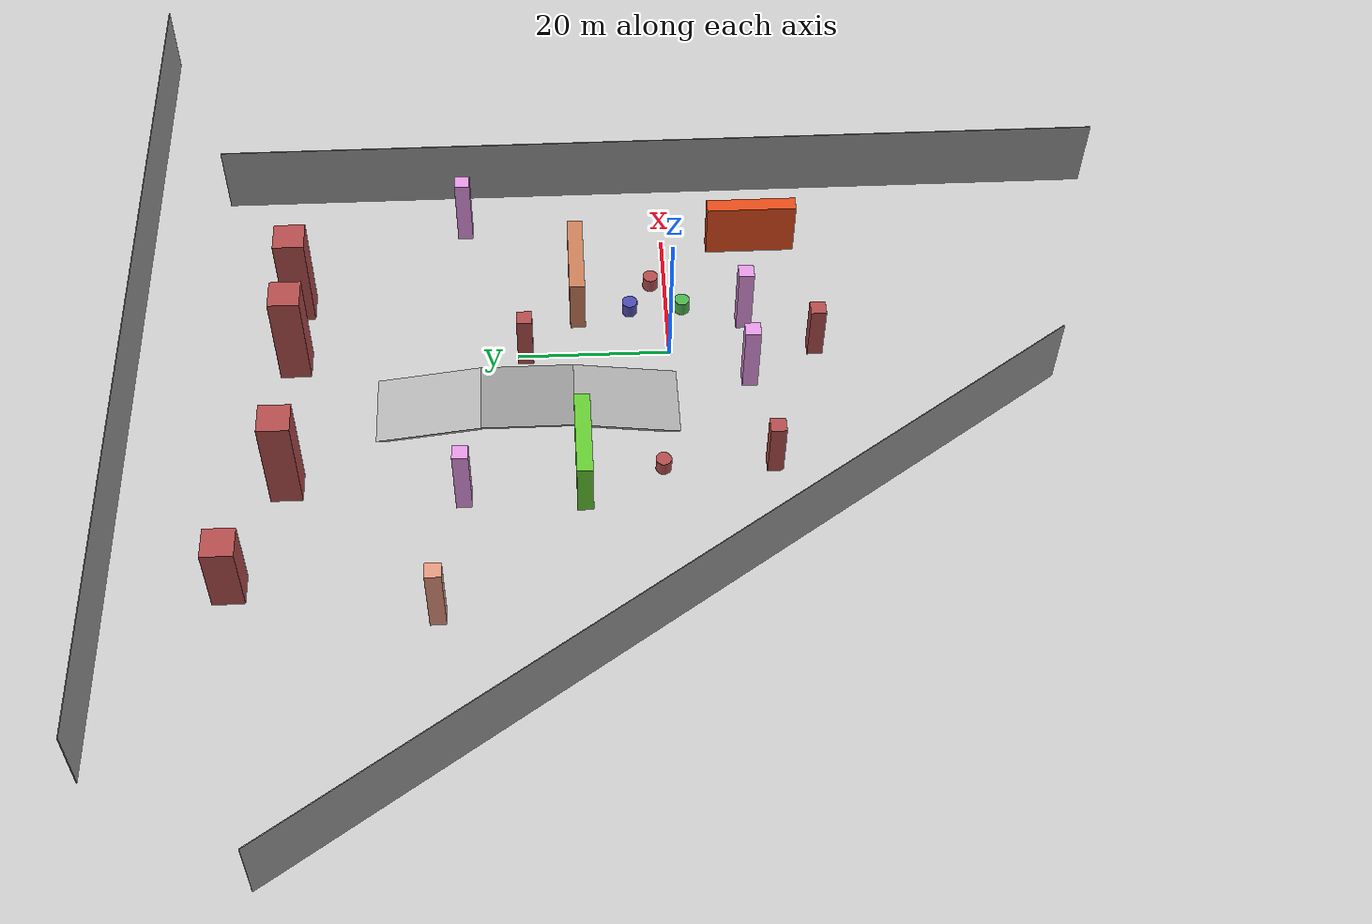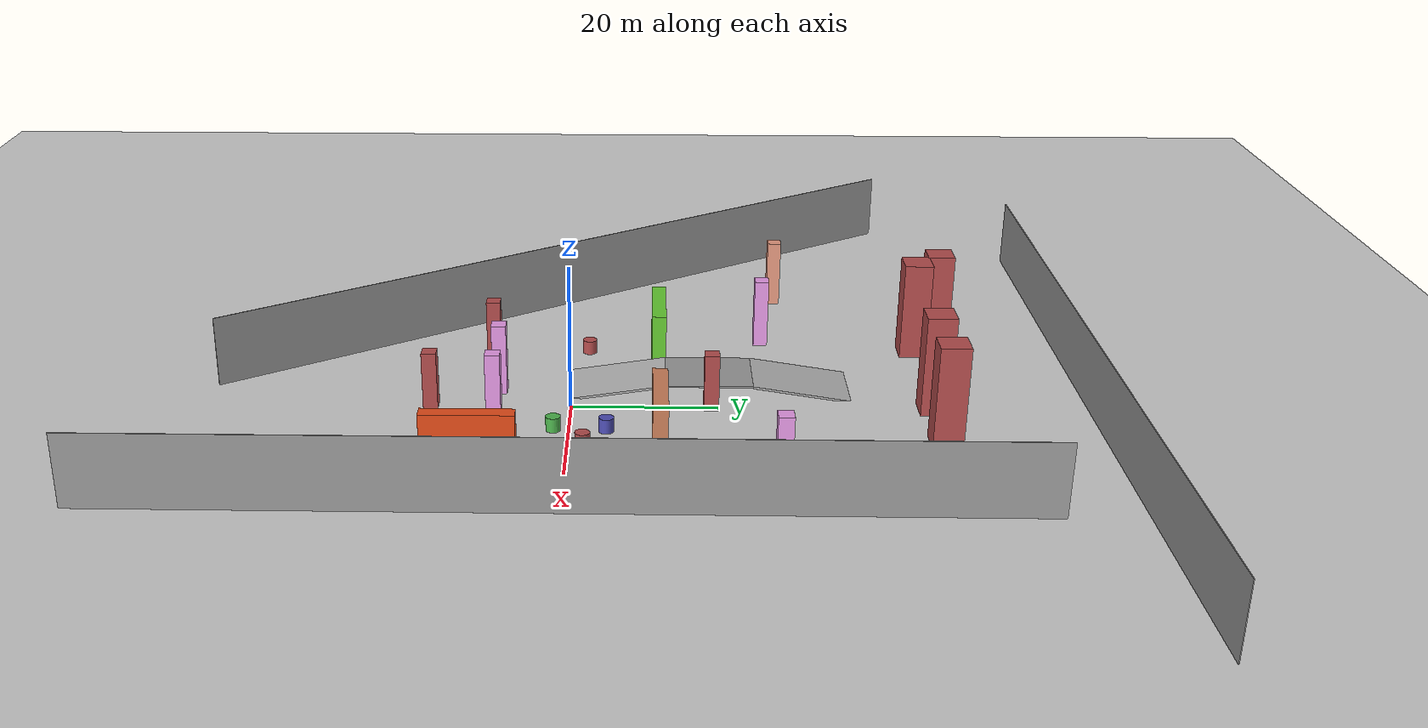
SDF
<?xml version="1.0" ?>
<sdf version="1.6">
  <world name="default">

    <!-- 光源 -->
    <light name="sky_fill" type="directional">
      <cast_shadows>false</cast_shadows>
      <pose>0 0 3 0 0 0</pose>
      <diffuse>0.4 0.45 0.5 1</diffuse>
      <specular>0 0 0 1</specular>
      <attenuation>
        <range>3000</range>
        <constant>1.0</constant>
        <linear>0.0</linear>
        <quadratic>0.0</quadratic>
      </attenuation>
      <direction>-0.1 0.1 -1</direction>
    </light>

    <light name="sky_fill_2" type="directional">
      <cast_shadows>false</cast_shadows>
      <pose>0 0 5 0 0 0</pose>
      <diffuse>0.9 0.95 1.0 1</diffuse>
      <specular>0.0 0.0 0.0 1</specular>
      <direction>0.08 -0.08 -1</direction>
    </light>

    <light name="sky_fill_3" type="directional">
      <cast_shadows>false</cast_shadows>
      <pose>0 0 8 0 0 0</pose>
      <diffuse>0.9 0.95 1.0 1</diffuse>
      <specular>0.0 0.0 0.0 1</specular>
      <direction>0.08 -0.08 -1</direction>
    </light>

    <light name="sky_fill_4" type="directional">
      <cast_shadows>false</cast_shadows>
      <pose>0 0 11 0 0 0</pose>
      <diffuse>0.9 0.95 1.0 1</diffuse>
      <specular>0.0 0.0 0.0 1</specular>
      <direction>0.08 -0.08 -1</direction>
    </light>

    <!-- 地面 -->
    <model name="ground_plane">
      <static>true</static>
      <link name="link">
        <collision name="collision">
          <geometry>
            <plane>
              <normal>0 0 1</normal>
              <size>200 200</size>
            </plane>
          </geometry>
          <surface>
            <friction>
              <ode>
                <mu>1000</mu>
                <mu2>1000</mu2>
                <slip1>0.0</slip1>
                <slip2>0.0</slip2>
              </ode>
            </friction>
            <contact>
              <ode>
                <kp>1e6</kp>
                <kd>1e2</kd>
                <max_vel>0.1</max_vel>
                <min_depth>0.001</min_depth>
              </ode>
            </contact>
          </surface>
        </collision>
        <visual name="visual">
          <cast_shadows>false</cast_shadows>
          <geometry>
            <plane>
              <normal>0 0 1</normal>
              <size>200 200</size>
            </plane>
          </geometry>
          <material>
            <script>
              <uri>file://media/materials/scripts/gazebo.material</uri>
              <name>Gazebo/Grey</name>
            </script>
          </material>
        </visual>
        <gravity>true</gravity>
      </link>
      <pose>0 0 0 0 0 0</pose>
    </model>

    <!-- ========= 立體結構：上坡 + 平台 + 下坡 ========= -->

    <!-- 上坡（長10m、寬6m、厚0.5m；pitch≈0.15rad） -->
    <model name="up_ramp">
      <static>true</static>
      <link name="link">
        <collision name="collision">
          <geometry>
            <box><size>10 16 0.3</size></box>
          </geometry>
          <surface>
            <friction>
              <ode>
                <mu>2000</mu>
                <mu2>2000</mu2>
                <slip1>0.0</slip1>
                <slip2>0.0</slip2>
              </ode>
              <torsional>
                <ode>
                  <coefficient>5.0</coefficient>
                  <use_patch_radius>true</use_patch_radius>
                  <patch_radius>1.0</patch_radius>
                  <surface_radius>0.5</surface_radius>
                  <slip>0.0</slip>
                </ode>
              </torsional>
            </friction>
            <contact>
              <ode>
                <kp>1e6</kp>
                <kd>1e2</kd>
                <max_vel>0.05</max_vel>
                <min_depth>0.001</min_depth>
              </ode>
            </contact>
          </surface>
        </collision>
        <visual name="visual">
          <geometry>
            <box><size>10 16 0.3</size></box>
          </geometry>
          <material>
            <ambient>0.7 0.7 0.7 1</ambient>
            <diffuse>0.7 0.7 0.7 1</diffuse>
          </material>
        </visual>
      </link>
      <!-- pose: x y z roll pitch yaw -->
      <pose>-8 5 0.5 0.15 0 0</pose>
    </model>

    <!-- 上方平台（6x6x0.2m） -->
    <model name="top_platform">
      <static>true</static>
      <link name="link">
        <collision name="collision">
          <geometry>
            <box><size>10 12 0.2</size></box>
          </geometry>
          <surface>
            <friction>
              <ode>
                <mu>200</mu>
                <mu2>200</mu2>
                <slip1>0.0</slip1>
                <slip2>0.0</slip2>
              </ode>
            </friction>
            <contact>
              <ode>
                <kp>1e6</kp>
                <kd>1e2</kd>
                <max_vel>0.1</max_vel>
                <min_depth>0.001</min_depth>
              </ode>
            </contact>
          </surface>
        </collision>
        <visual name="visual">
          <geometry>
            <box><size>10 12 0.2</size></box>
          </geometry>
          <material>
            <ambient>0.6 0.6 0.6 1</ambient>
            <diffuse>0.6 0.6 0.6 1</diffuse>
          </material>
        </visual>
      </link>
      <pose>-8.0 18.88 1.7415 0 0 0</pose>
    </model>

    <!-- 下坡（與上坡對稱） -->
    <model name="down_ramp">
      <static>true</static>
      <link name="link">
        <collision name="collision">
          <geometry>
            <box><size>10 16 0.3</size></box>
          </geometry>
          <surface>
            <friction>
              <ode>
                <mu>2000</mu>
                <mu2>2000</mu2>
                <slip1>0.0</slip1>
                <slip2>0.0</slip2>
              </ode>
              <torsional>
                <ode>
                  <coefficient>5.0</coefficient>
                  <use_patch_radius>true</use_patch_radius>
                  <patch_radius>1.0</patch_radius>
                  <surface_radius>0.5</surface_radius>
                  <slip>0.0</slip>
                </ode>
              </torsional>
            </friction>
            <contact>
              <ode>
                <kp>1e6</kp>
                <kd>1e2</kd>
                <max_vel>0.05</max_vel>
                <min_depth>0.001</min_depth>
              </ode>
            </contact>
          </surface>
        </collision>
        <visual name="visual">
          <geometry>
            <box><size>10 16 0.3</size></box>
          </geometry>
          <material>
            <ambient>0.7 0.7 0.7 1</ambient>
            <diffuse>0.7 0.7 0.7 1</diffuse>
          </material>
        </visual>
      </link>
      <pose>-8 32.765 0.5 -0.15 0 0</pose>
    </model>

    <!-- Surrounded -->
    <model name="right">
      <static>true</static>
      <link name="link">
        <collision name="collision">
          <geometry>
            <box><size>10 120 0.1</size></box>
          </geometry>
        </collision>
        <visual name="visual">
          <geometry>
            <box><size>10 120 0.1</size></box>
          </geometry>
          <material>
            <ambient>0.6 0.6 0.6 1</ambient>
            <diffuse>0.6 0.6 0.6 1</diffuse>
          </material>
        </visual>
      </link>
      <!-- 位置大致接在上坡後端；可按需要微調 -->
      <pose>30 0 5 0 1.57 0</pose>
    </model>

    <model name="tilt_left">
      <static>true</static>
      <link name="link">
        <collision name="collision">
          <geometry>
            <box><size>10 120 0.1</size></box>
          </geometry>
        </collision>
        <visual name="visual">
          <geometry>
            <box><size>10 120 0.1</size></box>
          </geometry>
          <material>
            <ambient>0.6 0.6 0.6 1</ambient>
            <diffuse>0.6 0.6 0.6 1</diffuse>
          </material>
        </visual>
      </link>
      <!-- 位置大致接在上坡後端；可按需要微調 -->
      <pose>-40 0 5 0 1.57 0.6</pose>
    </model>

    <model name="front">
      <static>true</static>
      <link name="link">
        <collision name="collision">
          <geometry>
            <box><size>10 120 0.1</size></box>
          </geometry>
        </collision>
        <visual name="visual">
          <geometry>
            <box><size>10 120 0.1</size></box>
          </geometry>
          <material>
            <ambient>0.6 0.6 0.6 1</ambient>
            <diffuse>0.6 0.6 0.6 1</diffuse>
          </material>
        </visual>
      </link>
      <!-- 位置大致接在上坡後端；可按需要微調 -->
      <pose>0 70 5 0 1.57 1.57</pose>
    </model>

    <!-- ========= 柱子（圓柱） ========= -->

    <model name="pillar_1">
      <static>true</static>
      <link name="link">
        <collision name="col">
          <geometry>
            <cylinder>
              <radius>1.0</radius>
              <length>2.0</length>
            </cylinder>
          </geometry>
          <surface>
            <friction>
              <ode>
                <mu>200</mu>
                <mu2>200</mu2>
              </ode>
            </friction>
          </surface>
        </collision>
        <visual name="vis">
          <geometry>
            <cylinder>
              <radius>1.0</radius>
              <length>2.0</length>
            </cylinder>
          </geometry>
          <material>
            <ambient>0.3 0.3 0.7 1</ambient>
            <diffuse>0.3 0.3 0.7 1</diffuse>
          </material>
        </visual>
      </link>
      <pose>7.5 5 1.0 0 0 0</pose>
    </model>

    <model name="pillar_2">
      <static>true</static>
      <link name="link">
        <collision name="col">
          <geometry>
            <cylinder>
              <radius>1.0</radius>
              <length>2.0</length>
            </cylinder>
          </geometry>
          <surface>
            <friction>
              <ode>
                <mu>200</mu>
                <mu2>200</mu2>
              </ode>
            </friction>
          </surface>
        </collision>
        <visual name="vis">
          <geometry>
            <cylinder>
              <radius>1.0</radius>
              <length>2.0</length>
            </cylinder>
          </geometry>
          <material>
            <ambient>0.3 0.7 0.3 1</ambient>
            <diffuse>0.3 0.7 0.3 1</diffuse>
          </material>
        </visual>
      </link>
      <pose>7.5 -2 1.1 0 0 0</pose>
    </model>

    <model name="pillar_3">
      <static>true</static>
      <link name="link">
        <collision name="col">
          <geometry>
            <cylinder>
              <radius>1.0</radius>
              <length>2.0</length>
            </cylinder>
          </geometry>
          <surface>
            <friction>
              <ode>
                <mu>200</mu>
                <mu2>200</mu2>
              </ode>
            </friction>
          </surface>
        </collision>
        <visual name="vis">
          <geometry>
            <cylinder>
              <radius>1.0</radius>
              <length>2.0</length>
            </cylinder>
          </geometry>
          <material>
            <ambient>0.7 0.3 0.3 1</ambient>
            <diffuse>0.7 0.3 0.3 1</diffuse>
          </material>
        </visual>
      </link>
      <pose>12 2 1.0 0 0 0</pose>
    </model>

    <model name="pillar_4">
      <static>true</static>
      <link name="link">
        <collision name="col">
          <geometry>
            <cylinder>
              <radius>1.0</radius>
              <length>2.0</length>
            </cylinder>
          </geometry>
          <surface>
            <friction>
              <ode>
                <mu>200</mu>
                <mu2>200</mu2>
              </ode>
            </friction>
          </surface>
        </collision>
        <visual name="vis">
          <geometry>
            <cylinder>
              <radius>1.0</radius>
              <length>2.0</length>
            </cylinder>
          </geometry>
          <material>
            <ambient>0.7 0.3 0.3 1</ambient>
            <diffuse>0.7 0.3 0.3 1</diffuse>
          </material>
        </visual>
      </link>
      <pose>-19 2 1.0 0 0 0</pose>
    </model>

<model name="box_1">
  <static>true</static>
  <link name="link">
    <collision name="col">
      <geometry>
        <box>
          <size>12.0 2.0 8.0</size>
        </box>
      </geometry>
      <surface>
        <friction>
          <ode>
            <mu>200</mu>
            <mu2>200</mu2>
          </ode>
        </friction>
      </surface>
    </collision>
    <visual name="vis">
      <geometry>
        <box>
          <size>12.0 2.0 8.0</size>
        </box>
      </geometry>
      <material>
        <ambient>0.4 0.8 0.2 1</ambient>
        <diffuse>0.4 0.8 0.2 1</diffuse>
      </material>
    </visual>
  </link>
  <pose>-19 12 4.0 0 0 0</pose>
</model>

<model name="box_2">
  <static>true</static>
  <link name="link">
    <collision name="col">
      <geometry>
        <box>
          <size>12.0 2.0 8.0</size>
        </box>
      </geometry>
      <surface>
        <friction>
          <ode>
            <mu>200</mu>
            <mu2>200</mu2>
          </ode>
        </friction>
      </surface>
    </collision>
    <visual name="vis">
      <geometry>
        <box>
          <size>12.0 2.0 8.0</size>
        </box>
      </geometry>
      <material>
        <ambient>0.8 0.5 0.35 1</ambient>
        <diffuse>0.8 0.5 0.35 1</diffuse>
      </material>
    </visual>
  </link>
  <pose>11 12 4.0 0 0 0</pose>
</model>

<model name="box_3">
  <static>true</static>
  <link name="link">
    <collision name="col">
      <geometry>
        <box>
          <size>2.0 12.0 8.0</size>
        </box>
      </geometry>
      <surface>
        <friction>
          <ode>
            <mu>200</mu>
            <mu2>200</mu2>
          </ode>
        </friction>
      </surface>
    </collision>
    <visual name="vis">
      <geometry>
        <box>
          <size>2.0 12.0 8.0</size>
        </box>
      </geometry>
      <material>
        <ambient>0.9 0.3 0.1 1</ambient>
        <diffuse>0.9 0.3 0.1 1</diffuse>
      </material>
    </visual>
  </link>
  <pose>19 -12 4.0 0 0 0</pose>
</model>

<model name="box_4">
  <static>true</static>
  <link name="link">
    <collision name="col">
      <geometry>
        <box>
          <size>2.0 2.0 8.0</size>
        </box>
      </geometry>
      <surface>
        <friction>
          <ode>
            <mu>200</mu>
            <mu2>200</mu2>
          </ode>
        </friction>
      </surface>
    </collision>
    <visual name="vis">
      <geometry>
        <box>
          <size>2.0 2.0 8.0</size>
        </box>
      </geometry>
      <material>
        <ambient>0.7 0.3 0.3 1</ambient>
        <diffuse>0.7 0.3 0.3 1</diffuse>
      </material>
    </visual>
  </link>
  <pose>-19 -12 4.0 0 0 0</pose>
</model>

<model name="box_5">
  <static>true</static>
  <link name="link">
    <collision name="col">
      <geometry>
        <box>
          <size>2.0 2.0 8.0</size>
        </box>
      </geometry>
      <surface>
        <friction>
          <ode>
            <mu>200</mu>
            <mu2>200</mu2>
          </ode>
        </friction>
      </surface>
    </collision>
    <visual name="vis">
      <geometry>
        <box>
          <size>2.0 2.0 8.0</size>
        </box>
      </geometry>
      <material>
        <ambient>0.7 0.3 0.3 1</ambient>
        <diffuse>0.7 0.3 0.3 1</diffuse>
      </material>
    </visual>
  </link>
  <pose>0 19 4.0 0 0 0</pose>
</model>

<model name="box_6">
  <static>true</static>
  <link name="link">
    <collision name="col">
      <geometry>
        <box>
          <size>2.0 2.0 8.0</size>
        </box>
      </geometry>
      <surface>
        <friction>
          <ode>
            <mu>200</mu>
            <mu2>200</mu2>
          </ode>
        </friction>
      </surface>
    </collision>
    <visual name="vis">
      <geometry>
        <box>
          <size>2.0 2.0 8.0</size>
        </box>
      </geometry>
      <material>
        <ambient>0.7 0.3 0.3 1</ambient>
        <diffuse>0.7 0.3 0.3 1</diffuse>
      </material>
    </visual>
  </link>
  <pose>0 -19 4.0 0 0 0</pose>
</model>

<model name="box_7">
  <static>true</static>
  <link name="link">
    <collision name="col">
      <geometry>
        <box>
          <size>4.0 4.0 14.0</size>
        </box>
      </geometry>
      <surface>
        <friction>
          <ode>
            <mu>200</mu>
            <mu2>200</mu2>
          </ode>
        </friction>
      </surface>
    </collision>
    <visual name="vis">
      <geometry>
        <box>
          <size>4.0 4.0 14.0</size>
        </box>
      </geometry>
      <material>
        <ambient>0.7 0.3 0.3 1</ambient>
        <diffuse>0.7 0.3 0.3 1</diffuse>
      </material>
    </visual>
  </link>
  <pose>0 49 7.0 0 0 0</pose>
</model>

<model name="box_8">
  <static>true</static>
  <link name="link">
    <collision name="col">
      <geometry>
        <box>
          <size>4.0 4.0 14.0</size>
        </box>
      </geometry>
      <surface>
        <friction>
          <ode>
            <mu>200</mu>
            <mu2>200</mu2>
          </ode>
        </friction>
      </surface>
    </collision>
    <visual name="vis">
      <geometry>
        <box>
          <size>4.0 4.0 14.0</size>
        </box>
      </geometry>
      <material>
        <ambient>0.7 0.3 0.3 1</ambient>
        <diffuse>0.7 0.3 0.3 1</diffuse>
      </material>
    </visual>
  </link>
  <pose>10 49 7.0 0 0 0</pose>
</model>

<model name="box_9">
  <static>true</static>
  <link name="link">
    <collision name="col">
      <geometry>
        <box>
          <size>4.0 4.0 14.0</size>
        </box>
      </geometry>
      <surface>
        <friction>
          <ode>
            <mu>200</mu>
            <mu2>200</mu2>
          </ode>
        </friction>
      </surface>
    </collision>
    <visual name="vis">
      <geometry>
        <box>
          <size>4.0 4.0 14.0</size>
        </box>
      </geometry>
      <material>
        <ambient>0.7 0.3 0.3 1</ambient>
        <diffuse>0.7 0.3 0.3 1</diffuse>
      </material>
    </visual>
  </link>
  <pose>-20 49 7.0 0 0 0</pose>
</model>

<model name="box_10">
  <static>true</static>
  <link name="link">
    <collision name="col">
      <geometry>
        <box>
          <size>4.0 4.0 10.0</size>
        </box>
      </geometry>
      <surface>
        <friction>
          <ode>
            <mu>200</mu>
            <mu2>200</mu2>
          </ode>
        </friction>
      </surface>
    </collision>
    <visual name="vis">
      <geometry>
        <box>
          <size>4.0 4.0 10.0</size>
        </box>
      </geometry>
      <material>
        <ambient>0.7 0.3 0.3 1</ambient>
        <diffuse>0.7 0.3 0.3 1</diffuse>
      </material>
    </visual>
  </link>
  <pose>-35 55 5.0 0 0 0</pose>
</model>

<model name="box_11">
  <static>true</static>
  <link name="link">
    <collision name="col">
      <geometry>
        <box>
          <size>2.0 2.0 10.0</size>
        </box>
      </geometry>
      <surface>
        <friction>
          <ode>
            <mu>200</mu>
            <mu2>200</mu2>
          </ode>
        </friction>
      </surface>
    </collision>
    <visual name="vis">
      <geometry>
        <box>
          <size>2.0 2.0 10.0</size>
        </box>
      </geometry>
      <material>
        <ambient>0.9 0.6 0.5 1</ambient>
        <diffuse>0.9 0.6 0.5 1</diffuse>
      </material>
    </visual>
  </link>
  <pose>-40 30 5.0 0 0 0</pose>
</model>

<model name="box_12">
  <static>true</static>
  <link name="link">
    <collision name="col">
      <geometry>
        <box>
          <size>2.0 2.0 10.0</size>
        </box>
      </geometry>
      <surface>
        <friction>
          <ode>
            <mu>200</mu>
            <mu2>200</mu2>
          </ode>
        </friction>
      </surface>
    </collision>
    <visual name="vis">
      <geometry>
        <box>
          <size>2.0 2.0 10.0</size>
        </box>
      </geometry>
      <material>
        <ambient>0.9 0.6 0.9 1</ambient>
        <diffuse>0.9 0.6 0.9 1</diffuse>
      </material>
    </visual>
  </link>
  <pose>23 27 5.0 0 0 0</pose>
</model>

<model name="box_13">
  <static>true</static>
  <link name="link">
    <collision name="col">
      <geometry>
        <box>
          <size>2.0 2.0 10.0</size>
        </box>
      </geometry>
      <surface>
        <friction>
          <ode>
            <mu>200</mu>
            <mu2>200</mu2>
          </ode>
        </friction>
      </surface>
    </collision>
    <visual name="vis">
      <geometry>
        <box>
          <size>2.0 2.0 10.0</size>
        </box>
      </geometry>
      <material>
        <ambient>0.9 0.6 0.9 1</ambient>
        <diffuse>0.9 0.6 0.9 1</diffuse>
      </material>
    </visual>
  </link>
  <pose>-23 27 5.0 0 0 0</pose>
</model>

<model name="box_14">
  <static>true</static>
  <link name="link">
    <collision name="col">
      <geometry>
        <box>
          <size>2.0 2.0 10.0</size>
        </box>
      </geometry>
      <surface>
        <friction>
          <ode>
            <mu>200</mu>
            <mu2>200</mu2>
          </ode>
        </friction>
      </surface>
    </collision>
    <visual name="vis">
      <geometry>
        <box>
          <size>2.0 2.0 10.0</size>
        </box>
      </geometry>
      <material>
        <ambient>0.9 0.6 0.9 1</ambient>
        <diffuse>0.9 0.6 0.9 1</diffuse>
      </material>
    </visual>
  </link>
  <pose>5 -10 5.0 0 0 0</pose>
</model>

<model name="box_15">
  <static>true</static>
  <link name="link">
    <collision name="col">
      <geometry>
        <box>
          <size>2.0 2.0 10.0</size>
        </box>
      </geometry>
      <surface>
        <friction>
          <ode>
            <mu>200</mu>
            <mu2>200</mu2>
          </ode>
        </friction>
      </surface>
    </collision>
    <visual name="vis">
      <geometry>
        <box>
          <size>2.0 2.0 10.0</size>
        </box>
      </geometry>
      <material>
        <ambient>0.9 0.6 0.9 1</ambient>
        <diffuse>0.9 0.6 0.9 1</diffuse>
      </material>
    </visual>
  </link>
  <pose>-5 -10 5.0 0 0 0</pose>
</model>

    <!-- 物理與場景 -->
    <gravity>0 0 -9.8</gravity>
    <magnetic_field>6e-06 2.3e-05 -4.2e-05</magnetic_field>
    <atmosphere type="adiabatic"/>
    <physics name="default_physics" default="0" type="ode">
      <!-- 如需更穩定接觸，可把 max_step_size 改小到 0.0005 -->
      <max_step_size>0.001</max_step_size>
      <real_time_factor>1</real_time_factor>
      <real_time_update_rate>1000</real_time_update_rate>
    </physics>
    <scene>
      <ambient>0.4 0.4 0.4 1</ambient>
      <background>0.7 0.7 0.7 1</background>
      <shadows>1</shadows>
    </scene>

    <gui fullscreen="0">
      <camera name="user_camera">
        <pose>4.6 -4.9 1.7 0 0.28 2.35619</pose>
        <view_controller>orbit</view_controller>
        <projection_type>perspective</projection_type>
      </camera>
    </gui>

  </world>
</sdf>
